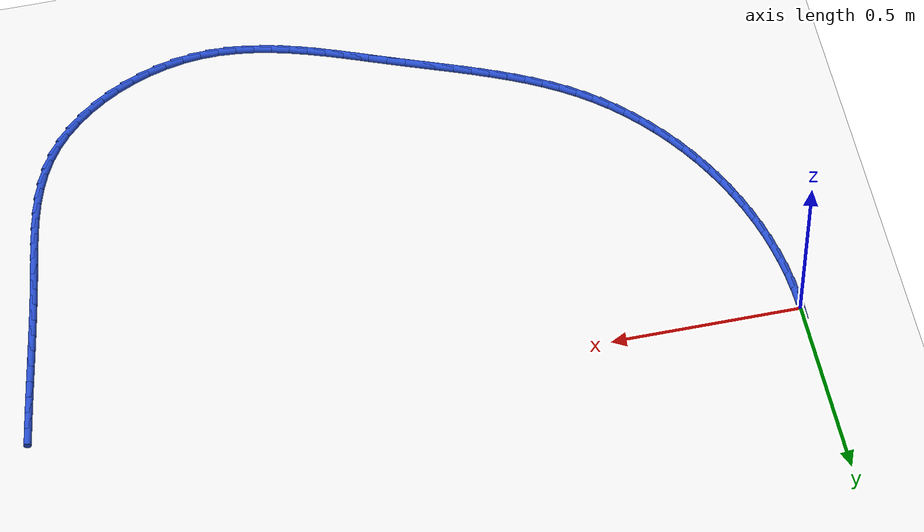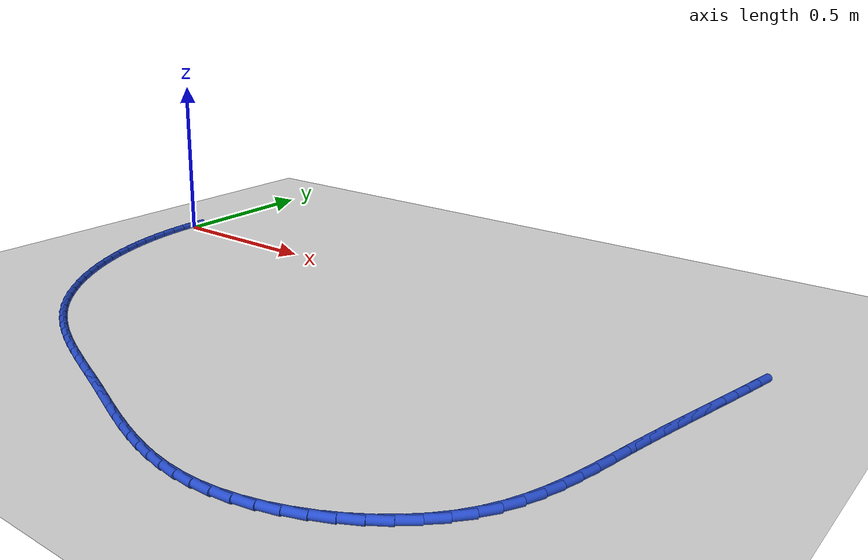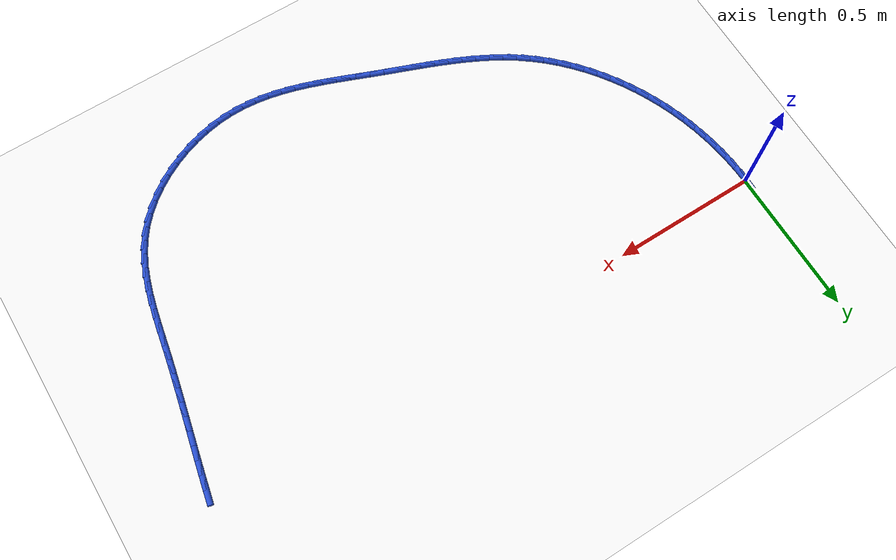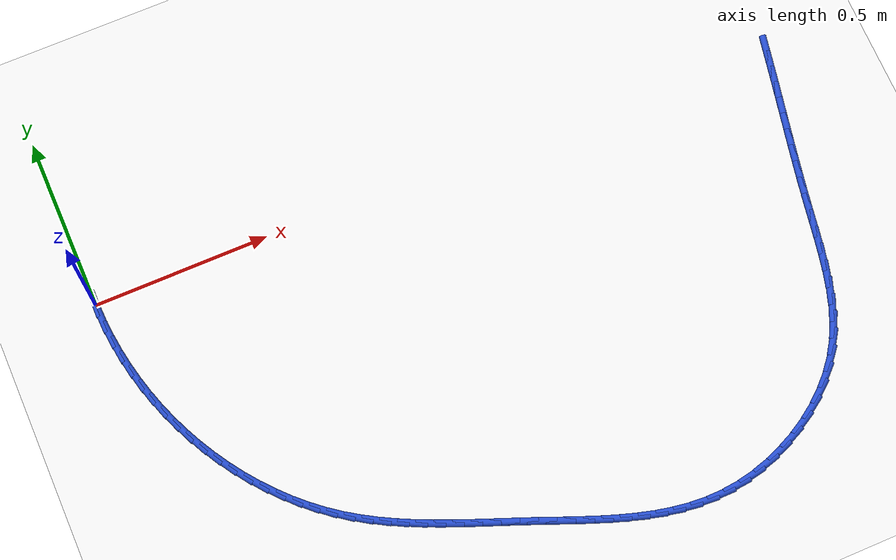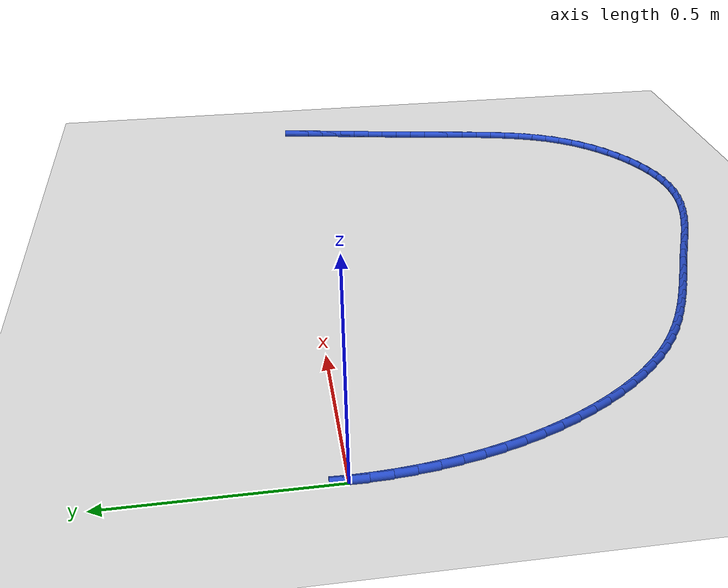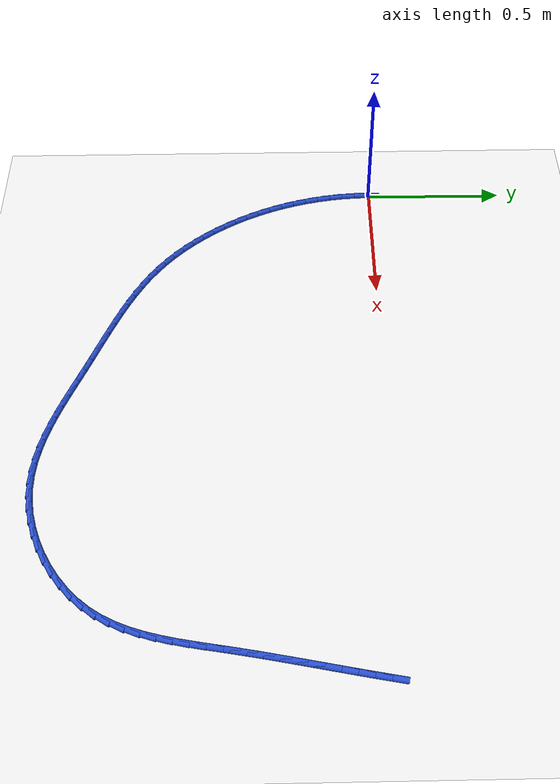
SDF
<sdf version="1.6">
 <world name="default">
  <model name="ground_plane">
   <static>1</static>
   <link name="link">
    <collision name="collision">
     <geometry><plane><normal>0 0 1</normal><size>100 100</size></plane></geometry>
     <surface><friction><ode><mu>100</mu><mu2>50</mu2></ode></friction></surface>
    </collision>
    <visual name="visual">
     <cast_shadows>0</cast_shadows>
     <geometry><plane><normal>0 0 1</normal><size>100 100</size></plane></geometry>
     <material>
      <script><uri>file://media/materials/scripts/gazebo.material</uri><name>Gazebo/WhiteGlow</name></script>
     </material>
    </visual>
   </link>
  </model>
  <model name="line">
   <link name="link_0">
    <pose>-3.469446951953614e-17 2.7755575615628914e-17 0.01 0 1.57 1.5528366445297883</pose>
    <collision name="collision">
     <geometry><cylinder><radius>0.01</radius><length>0.08</length></cylinder></geometry>
    </collision>
    <visual name="visual">
     <material>
      <script><name>Gazebo/Blue</name><uri>file://media/materials/scripts/gazebo.material</uri></script>
     </material>
     <geometry><cylinder><radius>0.01</radius><length>0.08</length></cylinder></geometry>
    </visual>
   </link>
   <link name="link_71">
    <pose>1.9989350898614466 -0.03742274236551915 0.01 0 1.57 1.3733126914370115</pose>
    <collision name="collision">
     <geometry><cylinder><radius>0.01</radius><length>0.08</length></cylinder></geometry>
    </collision>
    <visual name="visual">
     <material>
      <script><name>Gazebo/Blue</name><uri>file://media/materials/scripts/gazebo.material</uri></script>
     </material>
     <geometry><cylinder><radius>0.01</radius><length>0.08</length></cylinder></geometry>
    </visual>
   </link>
   <link name="link_72">
    <pose>1.9895544761353106 -0.08430433919154215 0.01 0 1.57 1.3681587415267245</pose>
    <collision name="collision">
     <geometry><cylinder><radius>0.01</radius><length>0.08</length></cylinder></geometry>
    </collision>
    <visual name="visual">
     <material>
      <script><name>Gazebo/Blue</name><uri>file://media/materials/scripts/gazebo.material</uri></script>
     </material>
     <geometry><cylinder><radius>0.01</radius><length>0.08</length></cylinder></geometry>
    </visual>
   </link>
   <link name="link_73">
    <pose>1.9799505745326915 -0.13104832579537357 0.01 0 1.57 1.3646684632932609</pose>
    <collision name="collision">
     <geometry><cylinder><radius>0.01</radius><length>0.08</length></cylinder></geometry>
    </collision>
    <visual name="visual">
     <material>
      <script><name>Gazebo/Blue</name><uri>file://media/materials/scripts/gazebo.material</uri></script>
     </material>
     <geometry><cylinder><radius>0.01</radius><length>0.08</length></cylinder></geometry>
    </visual>
   </link>
   <link name="link_74">
    <pose>1.9701918770394695 -0.17771883797079127 0.01 0 1.57 1.362856949237194</pose>
    <collision name="collision">
     <geometry><cylinder><radius>0.01</radius><length>0.08</length></cylinder></geometry>
    </collision>
    <visual name="visual">
     <material>
      <script><name>Gazebo/Blue</name><uri>file://media/materials/scripts/gazebo.material</uri></script>
     </material>
     <geometry><cylinder><radius>0.01</radius><length>0.08</length></cylinder></geometry>
    </visual>
   </link>
   <link name="link_75">
    <pose>1.9603468756415283 -0.22438001151157538 0.01 0 1.57 1.3627288609674097</pose>
    <collision name="collision">
     <geometry><cylinder><radius>0.01</radius><length>0.08</length></cylinder></geometry>
    </collision>
    <visual name="visual">
     <material>
      <script><name>Gazebo/Blue</name><uri>file://media/materials/scripts/gazebo.material</uri></script>
     </material>
     <geometry><cylinder><radius>0.01</radius><length>0.08</length></cylinder></geometry>
    </visual>
   </link>
   <link name="link_76">
    <pose>1.9504840623247492 -0.2710959822115053 0.01 0 1.57 1.3642785430743827</pose>
    <collision name="collision">
     <geometry><cylinder><radius>0.01</radius><length>0.08</length></cylinder></geometry>
    </collision>
    <visual name="visual">
     <material>
      <script><name>Gazebo/Blue</name><uri>file://media/materials/scripts/gazebo.material</uri></script>
     </material>
     <geometry><cylinder><radius>0.01</radius><length>0.08</length></cylinder></geometry>
    </visual>
   </link>
   <link name="link_77">
    <pose>1.940671929075014 -0.3179308858643604 0.01 0 1.57 1.3674901531322559</pose>
    <collision name="collision">
     <geometry><cylinder><radius>0.01</radius><length>0.08</length></cylinder></geometry>
    </collision>
    <visual name="visual">
     <material>
      <script><name>Gazebo/Blue</name><uri>file://media/materials/scripts/gazebo.material</uri></script>
     </material>
     <geometry><cylinder><radius>0.01</radius><length>0.08</length></cylinder></geometry>
    </visual>
   </link>
   <link name="link_78">
    <pose>1.9309789678782043 -0.36494885826392076 0.01 0 1.57 1.3723378067884895</pose>
    <collision name="collision">
     <geometry><cylinder><radius>0.01</radius><length>0.08</length></cylinder></geometry>
    </collision>
    <visual name="visual">
     <material>
      <script><name>Gazebo/Blue</name><uri>file://media/materials/scripts/gazebo.material</uri></script>
     </material>
     <geometry><cylinder><radius>0.01</radius><length>0.08</length></cylinder></geometry>
    </visual>
   </link>
   <link name="link_79">
    <pose>1.921473670720203 -0.4122140352039645 0.01 0 1.57 1.3787857442506184</pose>
    <collision name="collision">
     <geometry><cylinder><radius>0.01</radius><length>0.08</length></cylinder></geometry>
    </collision>
    <visual name="visual">
     <material>
      <script><name>Gazebo/Blue</name><uri>file://media/materials/scripts/gazebo.material</uri></script>
     </material>
     <geometry><cylinder><radius>0.01</radius><length>0.08</length></cylinder></geometry>
    </visual>
   </link>
   <link name="link_80">
    <pose>1.9122245295868914 -0.45979055247827144 0.01 0 1.57 1.3867885309609767</pose>
    <collision name="collision">
     <geometry><cylinder><radius>0.01</radius><length>0.08</length></cylinder></geometry>
    </collision>
    <visual name="visual">
     <material>
      <script><name>Gazebo/Blue</name><uri>file://media/materials/scripts/gazebo.material</uri></script>
     </material>
     <geometry><cylinder><radius>0.01</radius><length>0.08</length></cylinder></geometry>
    </visual>
   </link>
   <link name="link_81">
    <pose>1.903300036464152 -0.5077425458806211 0.01 0 1.57 1.3938473630042685</pose>
    <collision name="collision">
     <geometry><cylinder><radius>0.01</radius><length>0.08</length></cylinder></geometry>
    </collision>
    <visual name="visual">
     <material>
      <script><name>Gazebo/Blue</name><uri>file://media/materials/scripts/gazebo.material</uri></script>
     </material>
     <geometry><cylinder><radius>0.01</radius><length>0.08</length></cylinder></geometry>
    </visual>
   </link>
   <link name="link_82">
    <pose>1.8946588015698402 -0.556066410036178 0.01 0 1.57 1.3902241206906019</pose>
    <collision name="collision">
     <geometry><cylinder><radius>0.01</radius><length>0.08</length></cylinder></geometry>
    </collision>
    <visual name="visual">
     <material>
      <script><name>Gazebo/Blue</name><uri>file://media/materials/scripts/gazebo.material</uri></script>
     </material>
     <geometry><cylinder><radius>0.01</radius><length>0.08</length></cylinder></geometry>
    </visual>
   </link>
   <link name="link_83">
    <pose>1.8858190897737597 -0.604487070435527 0.01 0 1.57 1.3734938317183665</pose>
    <collision name="collision">
     <geometry><cylinder><radius>0.01</radius><length>0.08</length></cylinder></geometry>
    </collision>
    <visual name="visual">
     <material>
      <script><name>Gazebo/Blue</name><uri>file://media/materials/scripts/gazebo.material</uri></script>
     </material>
     <geometry><cylinder><radius>0.01</radius><length>0.08</length></cylinder></geometry>
    </visual>
   </link>
   <link name="link_84">
    <pose>1.8761888746590067 -0.6526614589358813 0.01 0 1.57 1.343367475687182</pose>
    <collision name="collision">
     <geometry><cylinder><radius>0.01</radius><length>0.08</length></cylinder></geometry>
    </collision>
    <visual name="visual">
     <material>
      <script><name>Gazebo/Blue</name><uri>file://media/materials/scripts/gazebo.material</uri></script>
     </material>
     <geometry><cylinder><radius>0.01</radius><length>0.08</length></cylinder></geometry>
    </visual>
   </link>
   <link name="link_85">
    <pose>1.8651761298086504 -0.7002465073944366 0.01 0 1.57 1.299287714988407</pose>
    <collision name="collision">
     <geometry><cylinder><radius>0.01</radius><length>0.08</length></cylinder></geometry>
    </collision>
    <visual name="visual">
     <material>
      <script><name>Gazebo/Blue</name><uri>file://media/materials/scripts/gazebo.material</uri></script>
     </material>
     <geometry><cylinder><radius>0.01</radius><length>0.08</length></cylinder></geometry>
    </visual>
   </link>
   <link name="link_86">
    <pose>1.8521888288057602 -0.7468991476683893 0.01 0 1.57 1.2405778758367656</pose>
    <collision name="collision">
     <geometry><cylinder><radius>0.01</radius><length>0.08</length></cylinder></geometry>
    </collision>
    <visual name="visual">
     <material>
      <script><name>Gazebo/Blue</name><uri>file://media/materials/scripts/gazebo.material</uri></script>
     </material>
     <geometry><cylinder><radius>0.01</radius><length>0.08</length></cylinder></geometry>
    </visual>
   </link>
   <link name="link_87">
    <pose>1.8366349452334056 -0.7922763116149356 0.01 0 1.57 1.166700270117607</pose>
    <collision name="collision">
     <geometry><cylinder><radius>0.01</radius><length>0.08</length></cylinder></geometry>
    </collision>
    <visual name="visual">
     <material>
      <script><name>Gazebo/Blue</name><uri>file://media/materials/scripts/gazebo.material</uri></script>
     </material>
     <geometry><cylinder><radius>0.01</radius><length>0.08</length></cylinder></geometry>
    </visual>
   </link>
   <link name="link_88">
    <pose>1.8179224526746567 -0.8360349310912701 0.01 0 1.57 1.077651963354923</pose>
    <collision name="collision">
     <geometry><cylinder><radius>0.01</radius><length>0.08</length></cylinder></geometry>
    </collision>
    <visual name="visual">
     <material>
      <script><name>Gazebo/Blue</name><uri>file://media/materials/scripts/gazebo.material</uri></script>
     </material>
     <geometry><cylinder><radius>0.01</radius><length>0.08</length></cylinder></geometry>
    </visual>
   </link>
   <link name="link_89">
    <pose>1.7954593247125825 -0.8778319379545897 0.01 0 1.57 0.9747529941736252</pose>
    <collision name="collision">
     <geometry><cylinder><radius>0.01</radius><length>0.08</length></cylinder></geometry>
    </collision>
    <visual name="visual">
     <material>
      <script><name>Gazebo/Blue</name><uri>file://media/materials/scripts/gazebo.material</uri></script>
     </material>
     <geometry><cylinder><radius>0.01</radius><length>0.08</length></cylinder></geometry>
    </visual>
   </link>
   <link name="link_90">
    <pose>1.768668636732932 -0.9173261944273331 0.01 0 1.57 0.8688655090806179</pose>
    <collision name="collision">
     <geometry><cylinder><radius>0.01</radius><length>0.08</length></cylinder></geometry>
    </collision>
    <visual name="visual">
     <material>
      <script><name>Gazebo/Blue</name><uri>file://media/materials/scripts/gazebo.material</uri></script>
     </material>
     <geometry><cylinder><radius>0.01</radius><length>0.08</length></cylinder></geometry>
    </visual>
   </link>
   <link name="link_91">
    <pose>1.7374560144334779 -0.9542382440007319 0.01 0 1.57 0.7704875501854702</pose>
    <collision name="collision">
     <geometry><cylinder><radius>0.01</radius><length>0.08</length></cylinder></geometry>
    </collision>
    <visual name="visual">
     <material>
      <script><name>Gazebo/Blue</name><uri>file://media/materials/scripts/gazebo.material</uri></script>
     </material>
     <geometry><cylinder><radius>0.01</radius><length>0.08</length></cylinder></geometry>
    </visual>
   </link>
   <link name="link_92">
    <pose>1.7022993879801922 -0.988361784125 0.01 0 1.57 0.6788575156633188</pose>
    <collision name="collision">
     <geometry><cylinder><radius>0.01</radius><length>0.08</length></cylinder></geometry>
    </collision>
    <visual name="visual">
     <material>
      <script><name>Gazebo/Blue</name><uri>file://media/materials/scripts/gazebo.material</uri></script>
     </material>
     <geometry><cylinder><radius>0.01</radius><length>0.08</length></cylinder></geometry>
    </visual>
   </link>
   <link name="link_93">
    <pose>1.6637099040803847 -1.0194947581048557 0.01 0 1.57 0.5924294088866922</pose>
    <collision name="collision">
     <geometry><cylinder><radius>0.01</radius><length>0.08</length></cylinder></geometry>
    </collision>
    <visual name="visual">
     <material>
      <script><name>Gazebo/Blue</name><uri>file://media/materials/scripts/gazebo.material</uri></script>
     </material>
     <geometry><cylinder><radius>0.01</radius><length>0.08</length></cylinder></geometry>
    </visual>
   </link>
   <link name="link_94">
    <pose>1.622198709441363 -1.0474351092450152 0.01 0 1.57 0.5096123799676534</pose>
    <collision name="collision">
     <geometry><cylinder><radius>0.01</radius><length>0.08</length></cylinder></geometry>
    </collision>
    <visual name="visual">
     <material>
      <script><name>Gazebo/Blue</name><uri>file://media/materials/scripts/gazebo.material</uri></script>
     </material>
     <geometry><cylinder><radius>0.01</radius><length>0.08</length></cylinder></geometry>
    </visual>
   </link>
   <link name="link_95">
    <pose>1.578276950770435 -1.0719807808501967 0.01 0 1.57 0.42881615281294577</pose>
    <collision name="collision">
     <geometry><cylinder><radius>0.01</radius><length>0.08</length></cylinder></geometry>
    </collision>
    <visual name="visual">
     <material>
      <script><name>Gazebo/Blue</name><uri>file://media/materials/scripts/gazebo.material</uri></script>
     </material>
     <geometry><cylinder><radius>0.01</radius><length>0.08</length></cylinder></geometry>
    </visual>
   </link>
   <link name="link_96">
    <pose>1.532455774774911 -1.0929297162251157 0.01 0 1.57 0.3484542522961835</pose>
    <collision name="collision">
     <geometry><cylinder><radius>0.01</radius><length>0.08</length></cylinder></geometry>
    </collision>
    <visual name="visual">
     <material>
      <script><name>Gazebo/Blue</name><uri>file://media/materials/scripts/gazebo.material</uri></script>
     </material>
     <geometry><cylinder><radius>0.01</radius><length>0.08</length></cylinder></geometry>
    </visual>
   </link>
   <link name="link_97">
    <pose>1.4852463281620991 -1.11007985867449 0.01 0 1.57 0.2669250072510236</pose>
    <collision name="collision">
     <geometry><cylinder><radius>0.01</radius><length>0.08</length></cylinder></geometry>
    </collision>
    <visual name="visual">
     <material>
      <script><name>Gazebo/Blue</name><uri>file://media/materials/scripts/gazebo.material</uri></script>
     </material>
     <geometry><cylinder><radius>0.01</radius><length>0.08</length></cylinder></geometry>
    </visual>
   </link>
   <link name="link_98">
    <pose>1.4371597576393076 -1.1232291515030361 0.01 0 1.57 0.1825858146033405</pose>
    <collision name="collision">
     <geometry><cylinder><radius>0.01</radius><length>0.08</length></cylinder></geometry>
    </collision>
    <visual name="visual">
     <material>
      <script><name>Gazebo/Blue</name><uri>file://media/materials/scripts/gazebo.material</uri></script>
     </material>
     <geometry><cylinder><radius>0.01</radius><length>0.08</length></cylinder></geometry>
    </visual>
   </link>
   <link name="link_99">
    <pose>1.388707209913845 -1.1321755380154717 0.01 0 1.57 0.09379329369680978</pose>
    <collision name="collision">
     <geometry><cylinder><radius>0.01</radius><length>0.08</length></cylinder></geometry>
    </collision>
    <visual name="visual">
     <material>
      <script><name>Gazebo/Blue</name><uri>file://media/materials/scripts/gazebo.material</uri></script>
     </material>
     <geometry><cylinder><radius>0.01</radius><length>0.08</length></cylinder></geometry>
    </visual>
   </link>
   <link name="link_100">
    <pose>1.3403972554111814 -1.1367200218056293 0.01 0 1.57 0.0037046899558618733</pose>
    <collision name="collision">
     <geometry><cylinder><radius>0.01</radius><length>0.08</length></cylinder></geometry>
    </collision>
    <visual name="visual">
     <material>
      <script><name>Gazebo/Blue</name><uri>file://media/materials/scripts/gazebo.material</uri></script>
     </material>
     <geometry><cylinder><radius>0.01</radius><length>0.08</length></cylinder></geometry>
    </visual>
   </link>
   <link name="link_101">
    <pose>1.2925417208260863 -1.1368973125350288 0.01 0 1.57 -0.07913980616714372</pose>
    <collision name="collision">
     <geometry><cylinder><radius>0.01</radius><length>0.08</length></cylinder></geometry>
    </collision>
    <visual name="visual">
     <material>
      <script><name>Gazebo/Blue</name><uri>file://media/materials/scripts/gazebo.material</uri></script>
     </material>
     <geometry><cylinder><radius>0.01</radius><length>0.08</length></cylinder></geometry>
    </visual>
   </link>
   <link name="link_102">
    <pose>1.2451203906391652 -1.1331365430058973 0.01 0 1.57 -0.15254316259941147</pose>
    <collision name="collision">
     <geometry><cylinder><radius>0.01</radius><length>0.08</length></cylinder></geometry>
    </collision>
    <visual name="visual">
     <material>
      <script><name>Gazebo/Blue</name><uri>file://media/materials/scripts/gazebo.material</uri></script>
     </material>
     <geometry><cylinder><radius>0.01</radius><length>0.08</length></cylinder></geometry>
    </visual>
   </link>
   <link name="link_103">
    <pose>1.198081067609994 -1.125904836162427 0.01 0 1.57 -0.21572165788779404</pose>
    <collision name="collision">
     <geometry><cylinder><radius>0.01</radius><length>0.08</length></cylinder></geometry>
    </collision>
    <visual name="visual">
     <material>
      <script><name>Gazebo/Blue</name><uri>file://media/materials/scripts/gazebo.material</uri></script>
     </material>
     <geometry><cylinder><radius>0.01</radius><length>0.08</length></cylinder></geometry>
    </visual>
   </link>
   <link name="link_104">
    <pose>1.1513715544981467 -1.11566931494881 0.01 0 1.57 -0.2684350880908006</pose>
    <collision name="collision">
     <geometry><cylinder><radius>0.01</radius><length>0.08</length></cylinder></geometry>
    </collision>
    <visual name="visual">
     <material>
      <script><name>Gazebo/Blue</name><uri>file://media/materials/scripts/gazebo.material</uri></script>
     </material>
     <geometry><cylinder><radius>0.01</radius><length>0.08</length></cylinder></geometry>
    </visual>
   </link>
   <link name="link_105">
    <pose>1.1049396540631995 -1.1028971023092387 0.01 0 1.57 -0.31079616336249627</pose>
    <collision name="collision">
     <geometry><cylinder><radius>0.01</radius><length>0.08</length></cylinder></geometry>
    </collision>
    <visual name="visual">
     <material>
      <script><name>Gazebo/Blue</name><uri>file://media/materials/scripts/gazebo.material</uri></script>
     </material>
     <geometry><cylinder><radius>0.01</radius><length>0.08</length></cylinder></geometry>
    </visual>
   </link>
   <link name="link_106">
    <pose>1.0587331690647281 -1.0880553211879054 0.01 0 1.57 -0.34309665291177793</pose>
    <collision name="collision">
     <geometry><cylinder><radius>0.01</radius><length>0.08</length></cylinder></geometry>
    </collision>
    <visual name="visual">
     <material>
      <script><name>Gazebo/Blue</name><uri>file://media/materials/scripts/gazebo.material</uri></script>
     </material>
     <geometry><cylinder><radius>0.01</radius><length>0.08</length></cylinder></geometry>
    </visual>
   </link>
   <link name="link_107">
    <pose>1.0126999022623064 -1.0716110945290023 0.01 0 1.57 -0.3656739027906056</pose>
    <collision name="collision">
     <geometry><cylinder><radius>0.01</radius><length>0.08</length></cylinder></geometry>
    </collision>
    <visual name="visual">
     <material>
      <script><name>Gazebo/Blue</name><uri>file://media/materials/scripts/gazebo.material</uri></script>
     </material>
     <geometry><cylinder><radius>0.01</radius><length>0.08</length></cylinder></geometry>
    </visual>
   </link>
   <link name="link_108">
    <pose>0.9667876564155098 -1.0540315452767213 0.01 0 1.57 -0.3788199711353789</pose>
    <collision name="collision">
     <geometry><cylinder><radius>0.01</radius><length>0.08</length></cylinder></geometry>
    </collision>
    <visual name="visual">
     <material>
      <script><name>Gazebo/Blue</name><uri>file://media/materials/scripts/gazebo.material</uri></script>
     </material>
     <geometry><cylinder><radius>0.01</radius><length>0.08</length></cylinder></geometry>
    </visual>
   </link>
   <link name="link_109">
    <pose>0.9209442342839128 -1.035783796375255 0.01 0 1.57 -0.3827261723668436</pose>
    <collision name="collision">
     <geometry><cylinder><radius>0.01</radius><length>0.08</length></cylinder></geometry>
    </collision>
    <visual name="visual">
     <material>
      <script><name>Gazebo/Blue</name><uri>file://media/materials/scripts/gazebo.material</uri></script>
     </material>
     <geometry><cylinder><radius>0.01</radius><length>0.08</length></cylinder></geometry>
    </visual>
   </link>
   <link name="link_110">
    <pose>0.8751174386270922 -1.017334970768796 0.01 0 1.57 -0.3776362101117998</pose>
    <collision name="collision">
     <geometry><cylinder><radius>0.01</radius><length>0.08</length></cylinder></geometry>
    </collision>
    <visual name="visual">
     <material>
      <script><name>Gazebo/Blue</name><uri>file://media/materials/scripts/gazebo.material</uri></script>
     </material>
     <geometry><cylinder><radius>0.01</radius><length>0.08</length></cylinder></geometry>
    </visual>
   </link>
   <link name="link_111">
    <pose>0.829257394454778 -0.9991434645684024 0.01 0 1.57 -0.37005771084808475</pose>
    <collision name="collision">
     <geometry><cylinder><radius>0.01</radius><length>0.08</length></cylinder></geometry>
    </collision>
    <visual name="visual">
     <material>
      <script><name>Gazebo/Blue</name><uri>file://media/materials/scripts/gazebo.material</uri></script>
     </material>
     <geometry><cylinder><radius>0.01</radius><length>0.08</length></cylinder></geometry>
    </visual>
   </link>
   <link name="link_112">
    <pose>0.7833979060910312 -0.9813532136143386 0.01 0 1.57 -0.36822346180716625</pose>
    <collision name="collision">
     <geometry><cylinder><radius>0.01</radius><length>0.08</length></cylinder></geometry>
    </collision>
    <visual name="visual">
     <material>
      <script><name>Gazebo/Blue</name><uri>file://media/materials/scripts/gazebo.material</uri></script>
     </material>
     <geometry><cylinder><radius>0.01</radius><length>0.08</length></cylinder></geometry>
    </visual>
   </link>
   <link name="link_113">
    <pose>0.7376778100739947 -0.9637134509610339 0.01 0 1.57 -0.37272207588843825</pose>
    <collision name="collision">
     <geometry><cylinder><radius>0.01</radius><length>0.08</length></cylinder></geometry>
    </collision>
    <visual name="visual">
     <material>
      <script><name>Gazebo/Blue</name><uri>file://media/materials/scripts/gazebo.material</uri></script>
     </material>
     <geometry><cylinder><radius>0.01</radius><length>0.08</length></cylinder></geometry>
    </visual>
   </link>
   <link name="link_114">
    <pose>0.692242605041883 -0.9459483740157146 0.01 0 1.57 -0.3836489648792888</pose>
    <collision name="collision">
     <geometry><cylinder><radius>0.01</radius><length>0.08</length></cylinder></geometry>
    </collision>
    <visual name="visual">
     <material>
      <script><name>Gazebo/Blue</name><uri>file://media/materials/scripts/gazebo.material</uri></script>
     </material>
     <geometry><cylinder><radius>0.01</radius><length>0.08</length></cylinder></geometry>
    </visual>
   </link>
   <link name="link_115">
    <pose>0.6472377896329089 -0.9277821801856055 0.01 0 1.57 -0.4011234548903446</pose>
    <collision name="collision">
     <geometry><cylinder><radius>0.01</radius><length>0.08</length></cylinder></geometry>
    </collision>
    <visual name="visual">
     <material>
      <script><name>Gazebo/Blue</name><uri>file://media/materials/scripts/gazebo.material</uri></script>
     </material>
     <geometry><cylinder><radius>0.01</radius><length>0.08</length></cylinder></geometry>
    </visual>
   </link>
   <link name="link_116">
    <pose>0.602808862485285 -0.9089390668779319 0.01 0 1.57 -0.4252760567728152</pose>
    <collision name="collision">
     <geometry><cylinder><radius>0.01</radius><length>0.08</length></cylinder></geometry>
    </collision>
    <visual name="visual">
     <material>
      <script><name>Gazebo/Blue</name><uri>file://media/materials/scripts/gazebo.material</uri></script>
     </material>
     <geometry><cylinder><radius>0.01</radius><length>0.08</length></cylinder></geometry>
    </visual>
   </link>
   <link name="link_117">
    <pose>0.559101322237224 -0.8891432314999185 0.01 0 1.57 -0.4562260718673202</pose>
    <collision name="collision">
     <geometry><cylinder><radius>0.01</radius><length>0.08</length></cylinder></geometry>
    </collision>
    <visual name="visual">
     <material>
      <script><name>Gazebo/Blue</name><uri>file://media/materials/scripts/gazebo.material</uri></script>
     </material>
     <geometry><cylinder><radius>0.01</radius><length>0.08</length></cylinder></geometry>
    </visual>
   </link>
   <link name="link_118">
    <pose>0.5162606675269404 -0.8681188714587912 0.01 0 1.57 -0.49404834612421133</pose>
    <collision name="collision">
     <geometry><cylinder><radius>0.01</radius><length>0.08</length></cylinder></geometry>
    </collision>
    <visual name="visual">
     <material>
      <script><name>Gazebo/Blue</name><uri>file://media/materials/scripts/gazebo.material</uri></script>
     </material>
     <geometry><cylinder><radius>0.01</radius><length>0.08</length></cylinder></geometry>
    </visual>
   </link>
   <link name="link_119">
    <pose>0.4744323969926466 -0.8455901841617749 0.01 0 1.57 -0.5387288975896453</pose>
    <collision name="collision">
     <geometry><cylinder><radius>0.01</radius><length>0.08</length></cylinder></geometry>
    </collision>
    <visual name="visual">
     <material>
      <script><name>Gazebo/Blue</name><uri>file://media/materials/scripts/gazebo.material</uri></script>
     </material>
     <geometry><cylinder><radius>0.01</radius><length>0.08</length></cylinder></geometry>
    </visual>
   </link>
   <link name="link_120">
    <pose>0.4337620092725558 -0.8212813670160951 0.01 0 1.57 -0.5901113350336702</pose>
    <collision name="collision">
     <geometry><cylinder><radius>0.01</radius><length>0.08</length></cylinder></geometry>
    </collision>
    <visual name="visual">
     <material>
      <script><name>Gazebo/Blue</name><uri>file://media/materials/scripts/gazebo.material</uri></script>
     </material>
     <geometry><cylinder><radius>0.01</radius><length>0.08</length></cylinder></geometry>
    </visual>
   </link>
   <link name="link_121">
    <pose>0.3943950030048812 -0.7949166174289767 0.01 0 1.57 -0.6476258589633568</pose>
    <collision name="collision">
     <geometry><cylinder><radius>0.01</radius><length>0.08</length></cylinder></geometry>
    </collision>
    <visual name="visual">
     <material>
      <script><name>Gazebo/Blue</name><uri>file://media/materials/scripts/gazebo.material</uri></script>
     </material>
     <geometry><cylinder><radius>0.01</radius><length>0.08</length></cylinder></geometry>
    </visual>
   </link>
   <link name="link_122">
    <pose>0.35647497058817723 -0.7662314416783202 0.01 0 1.57 -0.7066373518489655</pose>
    <collision name="collision">
     <geometry><cylinder><radius>0.01</radius><length>0.08</length></cylinder></geometry>
    </collision>
    <visual name="visual">
     <material>
      <script><name>Gazebo/Blue</name><uri>file://media/materials/scripts/gazebo.material</uri></script>
     </material>
     <geometry><cylinder><radius>0.01</radius><length>0.08</length></cylinder></geometry>
    </visual>
   </link>
   <link name="link_123">
    <pose>0.3201078278407477 -0.7351848644080515 0.01 0 1.57 -0.7633559236461415</pose>
    <collision name="collision">
     <geometry><cylinder><radius>0.01</radius><length>0.08</length></cylinder></geometry>
    </collision>
    <visual name="visual">
     <material>
      <script><name>Gazebo/Blue</name><uri>file://media/materials/scripts/gazebo.material</uri></script>
     </material>
     <geometry><cylinder><radius>0.01</radius><length>0.08</length></cylinder></geometry>
    </visual>
   </link>
   <link name="link_124">
    <pose>0.2853649515447144 -0.7019408149768877 0.01 0 1.57 -0.8179035802518171</pose>
    <collision name="collision">
     <geometry><cylinder><radius>0.01</radius><length>0.08</length></cylinder></geometry>
    </collision>
    <visual name="visual">
     <material>
      <script><name>Gazebo/Blue</name><uri>file://media/materials/scripts/gazebo.material</uri></script>
     </material>
     <geometry><cylinder><radius>0.01</radius><length>0.08</length></cylinder></geometry>
    </visual>
   </link>
   <link name="link_125">
    <pose>0.2523164412388782 -0.6666708000591672 0.01 0 1.57 -0.8705673862572219</pose>
    <collision name="collision">
     <geometry><cylinder><radius>0.01</radius><length>0.08</length></cylinder></geometry>
    </collision>
    <visual name="visual">
     <material>
      <script><name>Gazebo/Blue</name><uri>file://media/materials/scripts/gazebo.material</uri></script>
     </material>
     <geometry><cylinder><radius>0.01</radius><length>0.08</length></cylinder></geometry>
    </visual>
   </link>
   <link name="link_126">
    <pose>0.22103239646204026 -0.6295463263292287 0.01 0 1.57 -0.9216476398052643</pose>
    <collision name="collision">
     <geometry><cylinder><radius>0.01</radius><length>0.08</length></cylinder></geometry>
    </collision>
    <visual name="visual">
     <material>
      <script><name>Gazebo/Blue</name><uri>file://media/materials/scripts/gazebo.material</uri></script>
     </material>
     <geometry><cylinder><radius>0.01</radius><length>0.08</length></cylinder></geometry>
    </visual>
   </link>
   <link name="link_127">
    <pose>0.19158291675300265 -0.5907389004614118 0.01 0 1.57 -0.971452288261163</pose>
    <collision name="collision">
     <geometry><cylinder><radius>0.01</radius><length>0.08</length></cylinder></geometry>
    </collision>
    <visual name="visual">
     <material>
      <script><name>Gazebo/Blue</name><uri>file://media/materials/scripts/gazebo.material</uri></script>
     </material>
     <geometry><cylinder><radius>0.01</radius><length>0.08</length></cylinder></geometry>
    </visual>
   </link>
   <link name="link_128">
    <pose>0.1640381016505662 -0.550420029130055 0.01 0 1.57 -1.0202937225038493</pose>
    <collision name="collision">
     <geometry><cylinder><radius>0.01</radius><length>0.08</length></cylinder></geometry>
    </collision>
    <visual name="visual">
     <material>
      <script><name>Gazebo/Blue</name><uri>file://media/materials/scripts/gazebo.material</uri></script>
     </material>
     <geometry><cylinder><radius>0.01</radius><length>0.08</length></cylinder></geometry>
    </visual>
   </link>
   <link name="link_129">
    <pose>0.13846805069353224 -0.508761219009497 0.01 0 1.57 -1.0684874181826232</pose>
    <collision name="collision">
     <geometry><cylinder><radius>0.01</radius><length>0.08</length></cylinder></geometry>
    </collision>
    <visual name="visual">
     <material>
      <script><name>Gazebo/Blue</name><uri>file://media/materials/scripts/gazebo.material</uri></script>
     </material>
     <geometry><cylinder><radius>0.01</radius><length>0.08</length></cylinder></geometry>
    </visual>
   </link>
   <link name="link_130">
    <pose>0.11494286342070203 -0.4659339767740767 0.01 0 1.57 -1.1163510091343238</pose>
    <collision name="collision">
     <geometry><cylinder><radius>0.01</radius><length>0.08</length></cylinder></geometry>
    </collision>
    <visual name="visual">
     <material>
      <script><name>Gazebo/Blue</name><uri>file://media/materials/scripts/gazebo.material</uri></script>
     </material>
     <geometry><cylinder><radius>0.01</radius><length>0.08</length></cylinder></geometry>
    </visual>
   </link>
   <link name="link_131">
    <pose>0.09353245873891212 -0.4221095439008318 0.01 0 1.57 -1.1640767662284524</pose>
    <collision name="collision">
     <geometry><cylinder><radius>0.01</radius><length>0.08</length></cylinder></geometry>
    </collision>
    <visual name="visual">
     <material>
      <script><name>Gazebo/Blue</name><uri>file://media/materials/scripts/gazebo.material</uri></script>
     </material>
     <geometry><cylinder><radius>0.01</radius><length>0.08</length></cylinder></geometry>
    </visual>
   </link>
   <link name="link_132">
    <pose>0.07428811823439888 -0.3774317992285013 0.01 0 1.57 -1.211594569000846</pose>
    <collision name="collision">
     <geometry><cylinder><radius>0.01</radius><length>0.08</length></cylinder></geometry>
    </collision>
    <visual name="visual">
     <material>
      <script><name>Gazebo/Blue</name><uri>file://media/materials/scripts/gazebo.material</uri></script>
     </material>
     <geometry><cylinder><radius>0.01</radius><length>0.08</length></cylinder></geometry>
    </visual>
   </link>
   <link name="link_133">
    <pose>0.057226540919296354 -0.33199384871452126 0.01 0 1.57 -1.2589212605806972</pose>
    <collision name="collision">
     <geometry><cylinder><radius>0.01</radius><length>0.08</length></cylinder></geometry>
    </collision>
    <visual name="visual">
     <material>
      <script><name>Gazebo/Blue</name><uri>file://media/materials/scripts/gazebo.material</uri></script>
     </material>
     <geometry><cylinder><radius>0.01</radius><length>0.08</length></cylinder></geometry>
    </visual>
   </link>
   <link name="link_134">
    <pose>0.042360668829115516 -0.2858832824594815 0.01 0 1.57 -1.3060984216535998</pose>
    <collision name="collision">
     <geometry><cylinder><radius>0.01</radius><length>0.08</length></cylinder></geometry>
    </collision>
    <visual name="visual">
     <material>
      <script><name>Gazebo/Blue</name><uri>file://media/materials/scripts/gazebo.material</uri></script>
     </material>
     <geometry><cylinder><radius>0.01</radius><length>0.08</length></cylinder></geometry>
    </visual>
   </link>
   <link name="link_135">
    <pose>0.029703443999367175 -0.2391876905639707 0.01 0 1.57 -1.3531716493283346</pose>
    <collision name="collision">
     <geometry><cylinder><radius>0.01</radius><length>0.08</length></cylinder></geometry>
    </collision>
    <visual name="visual">
     <material>
      <script><name>Gazebo/Blue</name><uri>file://media/materials/scripts/gazebo.material</uri></script>
     </material>
     <geometry><cylinder><radius>0.01</radius><length>0.08</length></cylinder></geometry>
    </visual>
   </link>
   <link name="link_136">
    <pose>0.019267808465562655 -0.19199466312857985 0.01 0 1.57 -1.4001893910400078</pose>
    <collision name="collision">
     <geometry><cylinder><radius>0.01</radius><length>0.08</length></cylinder></geometry>
    </collision>
    <visual name="visual">
     <material>
      <script><name>Gazebo/Blue</name><uri>file://media/materials/scripts/gazebo.material</uri></script>
     </material>
     <geometry><cylinder><radius>0.01</radius><length>0.08</length></cylinder></geometry>
    </visual>
   </link>
   <link name="link_137">
    <pose>0.011066704263212717 -0.14439179025389784 0.01 0 1.57 -1.4472017738359302</pose>
    <collision name="collision">
     <geometry><cylinder><radius>0.01</radius><length>0.08</length></cylinder></geometry>
    </collision>
    <visual name="visual">
     <material>
      <script><name>Gazebo/Blue</name><uri>file://media/materials/scripts/gazebo.material</uri></script>
     </material>
     <geometry><cylinder><radius>0.01</radius><length>0.08</length></cylinder></geometry>
    </visual>
   </link>
   <link name="link_138">
    <pose>0.00511307342782831 -0.09646666204051427 0.01 0 1.57 -1.4942594303587091</pose>
    <collision name="collision">
     <geometry><cylinder><radius>0.01</radius><length>0.08</length></cylinder></geometry>
    </collision>
    <visual name="visual">
     <material>
      <script><name>Gazebo/Blue</name><uri>file://media/materials/scripts/gazebo.material</uri></script>
     </material>
     <geometry><cylinder><radius>0.01</radius><length>0.08</length></cylinder></geometry>
    </visual>
   </link>
   <link name="link_139">
    <pose>0.0014198579949204048 -0.04830686858901863 0.01 0 1.57 -1.5414123205791221</pose>
    <collision name="collision">
     <geometry><cylinder><radius>0.01</radius><length>0.08</length></cylinder></geometry>
    </collision>
    <visual name="visual">
     <material>
      <script><name>Gazebo/Blue</name><uri>file://media/materials/scripts/gazebo.material</uri></script>
     </material>
     <geometry><cylinder><radius>0.01</radius><length>0.08</length></cylinder></geometry>
    </visual>
   </link>
   <link name="link_140">
    <pose>-5.551115123125783e-17 1.6653345369377348e-16 0.01 0 1.57 1.5528841058725578</pose>
    <collision name="collision">
     <geometry><cylinder><radius>0.01</radius><length>0.08</length></cylinder></geometry>
    </collision>
    <visual name="visual">
     <material>
      <script><name>Gazebo/Blue</name><uri>file://media/materials/scripts/gazebo.material</uri></script>
     </material>
     <geometry><cylinder><radius>0.01</radius><length>0.08</length></cylinder></geometry>
    </visual>
   </link>
  </model>
 </world>
</sdf>
